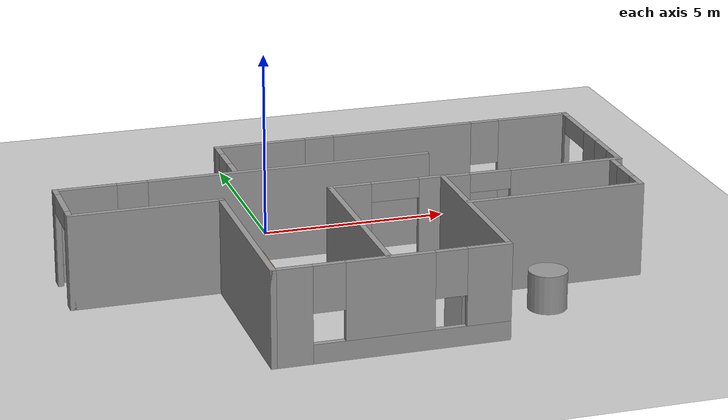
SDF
<sdf version="1.6">
 <world name="default">
  <light name="sun" type="directional">
   <pose>0 0 10 0 -0 0</pose>
   <diffuse>0.8 0.8 0.8 1</diffuse>
   <specular>0.1 0.1 0.1 1</specular>
   <attenuation>
    <range>1000</range>
    <constant>0.9</constant>
    <linear>0.01</linear>
    <quadratic>0.001</quadratic>
   </attenuation>
   <direction>-0.5 0.5 -1</direction>
  </light>
  <model name="ground_plane">
   <static>1</static>
   <link name="link">
    <collision name="collision">
     <geometry><plane><normal>0 0 1</normal><size>100 100</size></plane></geometry>
     <surface><friction><ode><mu>100</mu><mu2>50</mu2></ode></friction></surface>
    </collision>
    <visual name="visual">
     <cast_shadows>0</cast_shadows>
     <geometry><plane><normal>0 0 1</normal><size>100 100</size></plane></geometry>
     <material>
      <script><uri>file://media/materials/scripts/gazebo.material</uri><name>Gazebo/Grey</name></script>
     </material>
    </visual>
   </link>
  </model>
  <gravity>0 0 -9.8</gravity>
  <magnetic_field>6e-06 2.3e-05 -4.2e-05</magnetic_field>
  <atmosphere type="adiabatic"/>
  <physics name="default_physics" default="0" type="ode">
   <max_step_size>0.001</max_step_size>
   <real_time_factor>1</real_time_factor>
   <real_time_update_rate>1000</real_time_update_rate>
  </physics>
  <scene><ambient>0.4 0.4 0.4 1</ambient><background>0.7 0.7 0.7 1</background><shadows>1</shadows></scene>
  <spherical_coordinates>
   <surface_model>EARTH_WGS84</surface_model>
   <latitude_deg>0</latitude_deg>
   <longitude_deg>0</longitude_deg>
   <elevation>0</elevation>
   <heading_deg>0</heading_deg>
  </spherical_coordinates>
  <model name="MyHouse">
   <pose>1.335 -4.15 0 0 -0 0</pose>
   <link name="Wall_0">
    <pose>-2.35 2.35 0 0 -0 3.14159</pose>
    <visual name="Wall_0_Visual_0">
     <pose>-1.22429 0 1.25 0 -0 0</pose>
     <geometry><box><size>7.55142 0.15 2.5</size></box></geometry>
     <material>
      <script><uri>file://media/materials/scripts/gazebo.material</uri><name>Gazebo/Grey</name></script>
      <ambient>1 1 1 1</ambient>
     </material>
    </visual>
    <collision name="Wall_0_Collision_0">
     <geometry><box><size>7.55142 0.15 2.5</size></box></geometry>
     <pose>-1.22429 0 1.25 0 -0 0</pose>
    </collision>
    <visual name="Wall_0_Visual_1">
     <pose>3.77571 0 0.25 0 -0 0</pose>
     <geometry><box><size>2.44858 0.15 0.5</size></box></geometry>
     <material>
      <script><uri>file://media/materials/scripts/gazebo.material</uri><name>Gazebo/Grey</name></script>
      <ambient>1 1 1 1</ambient>
     </material>
    </visual>
    <collision name="Wall_0_Collision_1">
     <geometry><box><size>2.44858 0.15 0.5</size></box></geometry>
     <pose>3.77571 0 0.25 0 -0 0</pose>
    </collision>
    <visual name="Wall_0_Visual_2">
     <pose>4.17571 0 1.5 0 -0 0</pose>
     <geometry><box><size>1.64858 0.15 2</size></box></geometry>
     <material>
      <script><uri>file://media/materials/scripts/gazebo.material</uri><name>Gazebo/Grey</name></script>
      <ambient>1 1 1 1</ambient>
     </material>
    </visual>
    <collision name="Wall_0_Collision_2">
     <geometry><box><size>1.64858 0.15 2</size></box></geometry>
     <pose>4.17571 0 1.5 0 -0 0</pose>
    </collision>
    <visual name="Wall_0_Visual_3">
     <pose>2.95142 0 1.9 0 -0 0</pose>
     <geometry><box><size>0.8 0.15 1.2</size></box></geometry>
     <material>
      <script><uri>file://media/materials/scripts/gazebo.material</uri><name>Gazebo/Grey</name></script>
      <ambient>1 1 1 1</ambient>
     </material>
    </visual>
    <collision name="Wall_0_Collision_3">
     <geometry><box><size>0.8 0.15 1.2</size></box></geometry>
     <pose>2.95142 0 1.9 0 -0 0</pose>
    </collision>
   </link>
   <link name="Wall_1">
    <pose>-7.275 1.425 0 0 0 -1.5708</pose>
    <visual name="Wall_1_Visual_0">
     <pose>-0.815373 0 1.25 0 -0 0</pose>
     <geometry><box><size>0.369253 0.15 2.5</size></box></geometry>
     <material>
      <script><uri>file://media/materials/scripts/gazebo.material</uri><name>Gazebo/Grey</name></script>
      <ambient>1 1 1 1</ambient>
     </material>
    </visual>
    <collision name="Wall_1_Collision_0">
     <geometry><box><size>0.369253 0.15 2.5</size></box></geometry>
     <pose>-0.815373 0 1.25 0 -0 0</pose>
    </collision>
    <visual name="Wall_1_Visual_1">
     <pose>0.808106 0 1.25 0 -0 0</pose>
     <geometry><box><size>0.383788 0.15 2.5</size></box></geometry>
     <material>
      <script><uri>file://media/materials/scripts/gazebo.material</uri><name>Gazebo/Grey</name></script>
      <ambient>1 1 1 1</ambient>
     </material>
    </visual>
    <collision name="Wall_1_Collision_1">
     <geometry><box><size>0.383788 0.15 2.5</size></box></geometry>
     <pose>0.808106 0 1.25 0 -0 0</pose>
    </collision>
    <visual name="Wall_1_Visual_2">
     <pose>-0.007267 0 2.25 0 -0 0</pose>
     <geometry><box><size>1.24696 0.15 0.5</size></box></geometry>
     <material>
      <script><uri>file://media/materials/scripts/gazebo.material</uri><name>Gazebo/Grey</name></script>
      <ambient>1 1 1 1</ambient>
     </material>
    </visual>
    <collision name="Wall_1_Collision_2">
     <geometry><box><size>1.24696 0.15 0.5</size></box></geometry>
     <pose>-0.007267 0 2.25 0 -0 0</pose>
    </collision>
   </link>
   <link name="Wall_11">
    <collision name="Wall_11_Collision">
     <geometry><box><size>5 0.15 2.5</size></box></geometry>
     <pose>0 0 1.25 0 -0 0</pose>
    </collision>
    <visual name="Wall_11_Visual">
     <pose>0 0 1.25 0 -0 0</pose>
     <geometry><box><size>5 0.15 2.5</size></box></geometry>
     <material>
      <script><uri>file://media/materials/scripts/gazebo.material</uri><name>Gazebo/Grey</name></script>
      <ambient>1 1 1 1</ambient>
     </material>
    </visual>
    <pose>-0.574333 -1.86578 0 0 -0 1.5708</pose>
   </link>
   <link name="Wall_12">
    <pose>0.975667 0.559224 0 0 -0 0</pose>
    <visual name="Wall_12_Visual_0">
     <pose>-1.04763 0 1.25 0 -0 0</pose>
     <geometry><box><size>1.15474 0.15 2.5</size></box></geometry>
     <material>
      <script><uri>file://media/materials/scripts/gazebo.material</uri><name>Gazebo/Grey</name></script>
      <ambient>1 1 1 1</ambient>
     </material>
    </visual>
    <collision name="Wall_12_Collision_0">
     <geometry><box><size>1.15474 0.15 2.5</size></box></geometry>
     <pose>-1.04763 0 1.25 0 -0 0</pose>
    </collision>
    <visual name="Wall_12_Visual_1">
     <pose>1.21242 0 1.25 0 -0 0</pose>
     <geometry><box><size>0.825166 0.15 2.5</size></box></geometry>
     <material>
      <script><uri>file://media/materials/scripts/gazebo.material</uri><name>Gazebo/Grey</name></script>
      <ambient>1 1 1 1</ambient>
     </material>
    </visual>
    <collision name="Wall_12_Collision_1">
     <geometry><box><size>0.825166 0.15 2.5</size></box></geometry>
     <pose>1.21242 0 1.25 0 -0 0</pose>
    </collision>
    <visual name="Wall_12_Visual_2">
     <pose>0.164789 0 2.25 0 -0 0</pose>
     <geometry><box><size>1.27009 0.15 0.5</size></box></geometry>
     <material>
      <script><uri>file://media/materials/scripts/gazebo.material</uri><name>Gazebo/Grey</name></script>
      <ambient>1 1 1 1</ambient>
     </material>
    </visual>
    <collision name="Wall_12_Collision_2">
     <geometry><box><size>1.27009 0.15 0.5</size></box></geometry>
     <pose>0.164789 0 2.25 0 -0 0</pose>
    </collision>
   </link>
   <link name="Wall_14">
    <collision name="Wall_14_Collision">
     <geometry><box><size>4.75 0.15 2.5</size></box></geometry>
     <pose>0 0 1.25 0 -0 0</pose>
    </collision>
    <visual name="Wall_14_Visual">
     <pose>0 0 1.25 0 -0 0</pose>
     <geometry><box><size>4.75 0.15 2.5</size></box></geometry>
     <material>
      <script><uri>file://media/materials/scripts/gazebo.material</uri><name>Gazebo/Grey</name></script>
      <ambient>1 1 1 1</ambient>
     </material>
    </visual>
    <pose>4.77047 -1.4128 0 0 -0 0</pose>
   </link>
   <link name="Wall_15">
    <pose>7.07047 -0.487798 0 0 -0 1.5708</pose>
    <visual name="Wall_15_Visual_0">
     <pose>-0.688322 0 1.25 0 -0 0</pose>
     <geometry><box><size>0.623355 0.15 2.5</size></box></geometry>
     <material>
      <script><uri>file://media/materials/scripts/gazebo.material</uri><name>Gazebo/Grey</name></script>
      <ambient>1 1 1 1</ambient>
     </material>
    </visual>
    <collision name="Wall_15_Collision_0">
     <geometry><box><size>0.623355 0.15 2.5</size></box></geometry>
     <pose>-0.688322 0 1.25 0 -0 0</pose>
    </collision>
    <visual name="Wall_15_Visual_1">
     <pose>0.311678 0 0.25 0 -0 0</pose>
     <geometry><box><size>1.37664 0.15 0.5</size></box></geometry>
     <material>
      <script><uri>file://media/materials/scripts/gazebo.material</uri><name>Gazebo/Grey</name></script>
      <ambient>1 1 1 1</ambient>
     </material>
    </visual>
    <collision name="Wall_15_Collision_1">
     <geometry><box><size>1.37664 0.15 0.5</size></box></geometry>
     <pose>0.311678 0 0.25 0 -0 0</pose>
    </collision>
    <visual name="Wall_15_Visual_2">
     <pose>0.711678 0 1.5 0 -0 0</pose>
     <geometry><box><size>0.576645 0.15 2</size></box></geometry>
     <material>
      <script><uri>file://media/materials/scripts/gazebo.material</uri><name>Gazebo/Grey</name></script>
      <ambient>1 1 1 1</ambient>
     </material>
    </visual>
    <collision name="Wall_15_Collision_2">
     <geometry><box><size>0.576645 0.15 2</size></box></geometry>
     <pose>0.711678 0 1.5 0 -0 0</pose>
    </collision>
    <visual name="Wall_15_Visual_3">
     <pose>0.023355 0 1.9 0 -0 0</pose>
     <geometry><box><size>0.8 0.15 1.2</size></box></geometry>
     <material>
      <script><uri>file://media/materials/scripts/gazebo.material</uri><name>Gazebo/Grey</name></script>
      <ambient>1 1 1 1</ambient>
     </material>
    </visual>
    <collision name="Wall_15_Collision_3">
     <geometry><box><size>0.8 0.15 1.2</size></box></geometry>
     <pose>0.023355 0 1.9 0 -0 0</pose>
    </collision>
   </link>
   <link name="Wall_2">
    <collision name="Wall_2_Collision">
     <geometry><box><size>4 0.15 2.5</size></box></geometry>
     <pose>0 0 1.25 0 -0 0</pose>
    </collision>
    <visual name="Wall_2_Visual">
     <pose>0 0 1.25 0 -0 0</pose>
     <geometry><box><size>4 0.15 2.5</size></box></geometry>
     <material>
      <script><uri>file://media/materials/scripts/gazebo.material</uri><name>Gazebo/Grey</name></script>
      <ambient>1 1 1 1</ambient>
     </material>
    </visual>
    <pose>-5.35 0.5 0 0 -0 0</pose>
   </link>
   <link name="Wall_3">
    <collision name="Wall_3_Collision">
     <geometry><box><size>5 0.15 2.5</size></box></geometry>
     <pose>0 0 1.25 0 -0 0</pose>
    </collision>
    <visual name="Wall_3_Visual">
     <pose>0 0 1.25 0 -0 0</pose>
     <geometry><box><size>5 0.15 2.5</size></box></geometry>
     <material>
      <script><uri>file://media/materials/scripts/gazebo.material</uri><name>Gazebo/Grey</name></script>
      <ambient>1 1 1 1</ambient>
     </material>
    </visual>
    <pose>-3.425 -1.925 0 0 0 -1.5708</pose>
   </link>
   <link name="Wall_4">
    <pose>-0.5 -4.35 0 0 -0 0</pose>
    <visual name="Wall_4_Visual_0">
     <pose>-2.48157 0 1.25 0 -0 0</pose>
     <geometry><box><size>1.03687 0.15 2.5</size></box></geometry>
     <material>
      <script><uri>file://media/materials/scripts/gazebo.material</uri><name>Gazebo/Grey</name></script>
      <ambient>1 1 1 1</ambient>
     </material>
    </visual>
    <collision name="Wall_4_Collision_0">
     <geometry><box><size>1.03687 0.15 2.5</size></box></geometry>
     <pose>-2.48157 0 1.25 0 -0 0</pose>
    </collision>
    <visual name="Wall_4_Visual_1">
     <pose>0.518433 0 0.25 0 -0 0</pose>
     <geometry><box><size>4.96313 0.15 0.5</size></box></geometry>
     <material>
      <script><uri>file://media/materials/scripts/gazebo.material</uri><name>Gazebo/Grey</name></script>
      <ambient>1 1 1 1</ambient>
     </material>
    </visual>
    <collision name="Wall_4_Collision_1">
     <geometry><box><size>4.96313 0.15 0.5</size></box></geometry>
     <pose>0.518433 0 0.25 0 -0 0</pose>
    </collision>
    <visual name="Wall_4_Visual_2">
     <pose>-0.048078 0 1.5 0 -0 0</pose>
     <geometry><box><size>2.23011 0.15 2</size></box></geometry>
     <material>
      <script><uri>file://media/materials/scripts/gazebo.material</uri><name>Gazebo/Grey</name></script>
      <ambient>1 1 1 1</ambient>
     </material>
    </visual>
    <collision name="Wall_4_Collision_2">
     <geometry><box><size>2.23011 0.15 2</size></box></geometry>
     <pose>-0.048078 0 1.5 0 -0 0</pose>
    </collision>
    <visual name="Wall_4_Visual_3">
     <pose>2.43349 0 1.5 0 -0 0</pose>
     <geometry><box><size>1.13302 0.15 2</size></box></geometry>
     <material>
      <script><uri>file://media/materials/scripts/gazebo.material</uri><name>Gazebo/Grey</name></script>
      <ambient>1 1 1 1</ambient>
     </material>
    </visual>
    <collision name="Wall_4_Collision_3">
     <geometry><box><size>1.13302 0.15 2</size></box></geometry>
     <pose>2.43349 0 1.5 0 -0 0</pose>
    </collision>
    <visual name="Wall_4_Visual_4">
     <pose>-1.56313 0 1.9 0 -0 0</pose>
     <geometry><box><size>0.8 0.15 1.2</size></box></geometry>
     <material>
      <script><uri>file://media/materials/scripts/gazebo.material</uri><name>Gazebo/Grey</name></script>
      <ambient>1 1 1 1</ambient>
     </material>
    </visual>
    <collision name="Wall_4_Collision_4">
     <geometry><box><size>0.8 0.15 1.2</size></box></geometry>
     <pose>-1.56313 0 1.9 0 -0 0</pose>
    </collision>
    <visual name="Wall_4_Visual_5">
     <pose>1.46698 0 1.9 0 -0 0</pose>
     <geometry><box><size>0.8 0.15 1.2</size></box></geometry>
     <material>
      <script><uri>file://media/materials/scripts/gazebo.material</uri><name>Gazebo/Grey</name></script>
      <ambient>1 1 1 1</ambient>
     </material>
    </visual>
    <collision name="Wall_4_Collision_5">
     <geometry><box><size>0.8 0.15 1.2</size></box></geometry>
     <pose>1.46698 0 1.9 0 -0 0</pose>
    </collision>
   </link>
   <link name="Wall_5">
    <collision name="Wall_5_Collision">
     <geometry><box><size>5 0.15 2.5</size></box></geometry>
     <pose>0 0 1.25 0 -0 0</pose>
    </collision>
    <visual name="Wall_5_Visual">
     <pose>0 0 1.25 0 -0 0</pose>
     <geometry><box><size>5 0.15 2.5</size></box></geometry>
     <material>
      <script><uri>file://media/materials/scripts/gazebo.material</uri><name>Gazebo/Grey</name></script>
      <ambient>1 1 1 1</ambient>
     </material>
    </visual>
    <pose>2.425 -1.925 0 0 -0 1.5708</pose>
   </link>
   <link name="Wall_6">
    <pose>4.85 0.5 0 0 -0 0</pose>
    <visual name="Wall_6_Visual_0">
     <pose>-2.10385 0 1.25 0 -0 0</pose>
     <geometry><box><size>0.792301 0.15 2.5</size></box></geometry>
     <material>
      <script><uri>file://media/materials/scripts/gazebo.material</uri><name>Gazebo/Grey</name></script>
      <ambient>1 1 1 1</ambient>
     </material>
    </visual>
    <collision name="Wall_6_Collision_0">
     <geometry><box><size>0.792301 0.15 2.5</size></box></geometry>
     <pose>-2.10385 0 1.25 0 -0 0</pose>
    </collision>
    <visual name="Wall_6_Visual_1">
     <pose>0.950238 0 1.25 0 -0 0</pose>
     <geometry><box><size>3.09952 0.15 2.5</size></box></geometry>
     <material>
      <script><uri>file://media/materials/scripts/gazebo.material</uri><name>Gazebo/Grey</name></script>
      <ambient>1 1 1 1</ambient>
     </material>
    </visual>
    <collision name="Wall_6_Collision_1">
     <geometry><box><size>3.09952 0.15 2.5</size></box></geometry>
     <pose>0.950238 0 1.25 0 -0 0</pose>
    </collision>
    <visual name="Wall_6_Visual_2">
     <pose>-1.15361 0 2.25 0 -0 0</pose>
     <geometry><box><size>1.10817 0.15 0.5</size></box></geometry>
     <material>
      <script><uri>file://media/materials/scripts/gazebo.material</uri><name>Gazebo/Grey</name></script>
      <ambient>1 1 1 1</ambient>
     </material>
    </visual>
    <collision name="Wall_6_Collision_2">
     <geometry><box><size>1.10817 0.15 0.5</size></box></geometry>
     <pose>-1.15361 0 2.25 0 -0 0</pose>
    </collision>
   </link>
   <link name="Wall_7">
    <pose>7.275 2.425 0 0 -0 1.5708</pose>
    <visual name="Wall_7_Visual_0">
     <pose>-1.62697 0 1.25 0 -0 0</pose>
     <geometry><box><size>0.746051 0.15 2.5</size></box></geometry>
     <material>
      <script><uri>file://media/materials/scripts/gazebo.material</uri><name>Gazebo/Grey</name></script>
      <ambient>1 1 1 1</ambient>
     </material>
    </visual>
    <collision name="Wall_7_Collision_0">
     <geometry><box><size>0.746051 0.15 2.5</size></box></geometry>
     <pose>-1.62697 0 1.25 0 -0 0</pose>
    </collision>
    <visual name="Wall_7_Visual_1">
     <pose>1.83312 0 1.25 0 -0 0</pose>
     <geometry><box><size>0.33376 0.15 2.5</size></box></geometry>
     <material>
      <script><uri>file://media/materials/scripts/gazebo.material</uri><name>Gazebo/Grey</name></script>
      <ambient>1 1 1 1</ambient>
     </material>
    </visual>
    <collision name="Wall_7_Collision_1">
     <geometry><box><size>0.33376 0.15 2.5</size></box></geometry>
     <pose>1.83312 0 1.25 0 -0 0</pose>
    </collision>
    <visual name="Wall_7_Visual_2">
     <pose>-0.463595 0 0.25 0 -0 0</pose>
     <geometry><box><size>1.58071 0.15 0.5</size></box></geometry>
     <material>
      <script><uri>file://media/materials/scripts/gazebo.material</uri><name>Gazebo/Grey</name></script>
      <ambient>1 1 1 1</ambient>
     </material>
    </visual>
    <collision name="Wall_7_Collision_2">
     <geometry><box><size>1.58071 0.15 0.5</size></box></geometry>
     <pose>-0.463595 0 0.25 0 -0 0</pose>
    </collision>
    <visual name="Wall_7_Visual_3">
     <pose>-0.063595 0 1.5 0 -0 0</pose>
     <geometry><box><size>0.780708 0.15 2</size></box></geometry>
     <material>
      <script><uri>file://media/materials/scripts/gazebo.material</uri><name>Gazebo/Grey</name></script>
      <ambient>1 1 1 1</ambient>
     </material>
    </visual>
    <collision name="Wall_7_Collision_3">
     <geometry><box><size>0.780708 0.15 2</size></box></geometry>
     <pose>-0.063595 0 1.5 0 -0 0</pose>
    </collision>
    <visual name="Wall_7_Visual_4">
     <pose>-0.853949 0 1.9 0 -0 0</pose>
     <geometry><box><size>0.8 0.15 1.2</size></box></geometry>
     <material>
      <script><uri>file://media/materials/scripts/gazebo.material</uri><name>Gazebo/Grey</name></script>
      <ambient>1 1 1 1</ambient>
     </material>
    </visual>
    <collision name="Wall_7_Collision_4">
     <geometry><box><size>0.8 0.15 1.2</size></box></geometry>
     <pose>-0.853949 0 1.9 0 -0 0</pose>
    </collision>
    <visual name="Wall_7_Visual_5">
     <pose>0.9965 0 2.25 0 -0 0</pose>
     <geometry><box><size>1.33948 0.15 0.5</size></box></geometry>
     <material>
      <script><uri>file://media/materials/scripts/gazebo.material</uri><name>Gazebo/Grey</name></script>
      <ambient>1 1 1 1</ambient>
     </material>
    </visual>
    <collision name="Wall_7_Collision_5">
     <geometry><box><size>1.33948 0.15 0.5</size></box></geometry>
     <pose>0.9965 0 2.25 0 -0 0</pose>
    </collision>
   </link>
   <link name="Wall_8">
    <pose>2.35 4.35 0 0 -0 3.14159</pose>
    <visual name="Wall_8_Visual_0">
     <pose>-3.98616 0 1.25 0 -0 0</pose>
     <geometry><box><size>2.02769 0.15 2.5</size></box></geometry>
     <material>
      <script><uri>file://media/materials/scripts/gazebo.material</uri><name>Gazebo/Grey</name></script>
      <ambient>1 1 1 1</ambient>
     </material>
    </visual>
    <collision name="Wall_8_Collision_0">
     <geometry><box><size>2.02769 0.15 2.5</size></box></geometry>
     <pose>-3.98616 0 1.25 0 -0 0</pose>
    </collision>
    <visual name="Wall_8_Visual_1">
     <pose>1.01385 0 0.25 0 -0 0</pose>
     <geometry><box><size>7.97231 0.15 0.5</size></box></geometry>
     <material>
      <script><uri>file://media/materials/scripts/gazebo.material</uri><name>Gazebo/Grey</name></script>
      <ambient>1 1 1 1</ambient>
     </material>
    </visual>
    <collision name="Wall_8_Collision_1">
     <geometry><box><size>7.97231 0.15 0.5</size></box></geometry>
     <pose>1.01385 0 0.25 0 -0 0</pose>
    </collision>
    <visual name="Wall_8_Visual_2">
     <pose>-0.224554 0 1.5 0 -0 0</pose>
     <geometry><box><size>3.89551 0.15 2</size></box></geometry>
     <material>
      <script><uri>file://media/materials/scripts/gazebo.material</uri><name>Gazebo/Grey</name></script>
      <ambient>1 1 1 1</ambient>
     </material>
    </visual>
    <collision name="Wall_8_Collision_2">
     <geometry><box><size>3.89551 0.15 2</size></box></geometry>
     <pose>-0.224554 0 1.5 0 -0 0</pose>
    </collision>
    <visual name="Wall_8_Visual_3">
     <pose>3.7616 0 1.5 0 -0 0</pose>
     <geometry><box><size>2.4768 0.15 2</size></box></geometry>
     <material>
      <script><uri>file://media/materials/scripts/gazebo.material</uri><name>Gazebo/Grey</name></script>
      <ambient>1 1 1 1</ambient>
     </material>
    </visual>
    <collision name="Wall_8_Collision_3">
     <geometry><box><size>2.4768 0.15 2</size></box></geometry>
     <pose>3.7616 0 1.5 0 -0 0</pose>
    </collision>
    <visual name="Wall_8_Visual_4">
     <pose>-2.57231 0 1.9 0 -0 0</pose>
     <geometry><box><size>0.8 0.15 1.2</size></box></geometry>
     <material>
      <script><uri>file://media/materials/scripts/gazebo.material</uri><name>Gazebo/Grey</name></script>
      <ambient>1 1 1 1</ambient>
     </material>
    </visual>
    <collision name="Wall_8_Collision_4">
     <geometry><box><size>0.8 0.15 1.2</size></box></geometry>
     <pose>-2.57231 0 1.9 0 -0 0</pose>
    </collision>
    <visual name="Wall_8_Visual_5">
     <pose>2.1232 0 1.9 0 -0 0</pose>
     <geometry><box><size>0.8 0.15 1.2</size></box></geometry>
     <material>
      <script><uri>file://media/materials/scripts/gazebo.material</uri><name>Gazebo/Grey</name></script>
      <ambient>1 1 1 1</ambient>
     </material>
    </visual>
    <collision name="Wall_8_Collision_5">
     <geometry><box><size>0.8 0.15 1.2</size></box></geometry>
     <pose>2.1232 0 1.9 0 -0 0</pose>
    </collision>
   </link>
   <link name="Wall_9">
    <pose>-2.575 3.425 0 0 0 -1.5708</pose>
    <visual name="Wall_9_Visual_0">
     <pose>-0.69825 0 1.25 0 -0 0</pose>
     <geometry><box><size>0.6035 0.15 2.5</size></box></geometry>
     <material>
      <script><uri>file://media/materials/scripts/gazebo.material</uri><name>Gazebo/Grey</name></script>
      <ambient>1 1 1 1</ambient>
     </material>
    </visual>
    <collision name="Wall_9_Collision_0">
     <geometry><box><size>0.6035 0.15 2.5</size></box></geometry>
     <pose>-0.69825 0 1.25 0 -0 0</pose>
    </collision>
    <visual name="Wall_9_Visual_1">
     <pose>0.30175 0 0.25 0 -0 0</pose>
     <geometry><box><size>1.3965 0.15 0.5</size></box></geometry>
     <material>
      <script><uri>file://media/materials/scripts/gazebo.material</uri><name>Gazebo/Grey</name></script>
      <ambient>1 1 1 1</ambient>
     </material>
    </visual>
    <collision name="Wall_9_Collision_1">
     <geometry><box><size>1.3965 0.15 0.5</size></box></geometry>
     <pose>0.30175 0 0.25 0 -0 0</pose>
    </collision>
    <visual name="Wall_9_Visual_2">
     <pose>0.70175 0 1.5 0 -0 0</pose>
     <geometry><box><size>0.5965 0.15 2</size></box></geometry>
     <material>
      <script><uri>file://media/materials/scripts/gazebo.material</uri><name>Gazebo/Grey</name></script>
      <ambient>1 1 1 1</ambient>
     </material>
    </visual>
    <collision name="Wall_9_Collision_2">
     <geometry><box><size>0.5965 0.15 2</size></box></geometry>
     <pose>0.70175 0 1.5 0 -0 0</pose>
    </collision>
    <visual name="Wall_9_Visual_3">
     <pose>0.0035 0 1.9 0 -0 0</pose>
     <geometry><box><size>0.8 0.15 1.2</size></box></geometry>
     <material>
      <script><uri>file://media/materials/scripts/gazebo.material</uri><name>Gazebo/Grey</name></script>
      <ambient>1 1 1 1</ambient>
     </material>
    </visual>
    <collision name="Wall_9_Collision_3">
     <geometry><box><size>0.8 0.15 1.2</size></box></geometry>
     <pose>0.0035 0 1.9 0 -0 0</pose>
    </collision>
   </link>
   <static>1</static>
  </model>
  <model name="table">
   <static>0</static>
   <link name="link">
    <collision name="surface">
     <pose>0 0 1 0 -0 0</pose>
     <geometry><box><size>1.5 0.8 0.03</size></box></geometry>
     <surface><friction><ode><mu>0.6</mu><mu2>0.6</mu2></ode></friction></surface>
    </collision>
    <visual name="visual1">
     <pose>0 0 1 0 -0 0</pose>
     <geometry><box><size>1.4 0.8 0.04</size></box></geometry>
     <material>
      <script><uri>file://media/materials/scripts/gazebo.material</uri><name>Gazebo/Wood</name></script>
     </material>
    </visual>
    <collision name="front_left_leg">
     <pose>0.68 0.38 0.5 0 -0 0</pose>
     <geometry><cylinder><radius>0.02</radius><length>1</length></cylinder></geometry>
    </collision>
    <visual name="front_left_leg">
     <pose>0.68 0.38 0.5 0 -0 0</pose>
     <geometry><cylinder><radius>0.02</radius><length>1</length></cylinder></geometry>
     <material>
      <script><uri>file://media/materials/scripts/gazebo.material</uri><name>Gazebo/Grey</name></script>
     </material>
    </visual>
    <collision name="front_right_leg">
     <pose>0.68 -0.38 0.5 0 -0 0</pose>
     <geometry><cylinder><radius>0.02</radius><length>1</length></cylinder></geometry>
    </collision>
    <visual name="front_right_leg">
     <pose>0.68 -0.38 0.5 0 -0 0</pose>
     <geometry><cylinder><radius>0.02</radius><length>1</length></cylinder></geometry>
     <material>
      <script><uri>file://media/materials/scripts/gazebo.material</uri><name>Gazebo/Grey</name></script>
     </material>
    </visual>
    <collision name="back_right_leg">
     <pose>-0.68 -0.38 0.5 0 -0 0</pose>
     <geometry><cylinder><radius>0.02</radius><length>1</length></cylinder></geometry>
    </collision>
    <visual name="back_right_leg">
     <pose>-0.68 -0.38 0.5 0 -0 0</pose>
     <geometry><cylinder><radius>0.02</radius><length>1</length></cylinder></geometry>
     <material>
      <script><uri>file://media/materials/scripts/gazebo.material</uri><name>Gazebo/Grey</name></script>
     </material>
    </visual>
    <collision name="back_left_leg">
     <pose>-0.68 0.38 0.5 0 -0 0</pose>
     <geometry><cylinder><radius>0.02</radius><length>1</length></cylinder></geometry>
    </collision>
    <visual name="back_left_leg">
     <pose>-0.68 0.38 0.5 0 -0 0</pose>
     <geometry><cylinder><radius>0.02</radius><length>1</length></cylinder></geometry>
     <material>
      <script><uri>file://media/materials/scripts/gazebo.material</uri><name>Gazebo/Grey</name></script>
     </material>
    </visual>
    <inertial>
     <inertia><ixx>1</ixx><ixy>0</ixy><ixz>0</ixz><iyy>1</iyy><iyz>0</iyz><izz>1</izz></inertia>
     <mass>1</mass>
    </inertial>
   </link>
   <pose>7.52075 -4.18694 -1e-06 -1e-06 1e-06 0</pose>
  </model>
  <model name="table_0">
   <static>0</static>
   <link name="link">
    <collision name="surface">
     <pose>0 0 1 0 -0 0</pose>
     <geometry><box><size>1.5 0.8 0.03</size></box></geometry>
     <surface><friction><ode><mu>0.6</mu><mu2>0.6</mu2></ode></friction></surface>
    </collision>
    <visual name="visual1">
     <pose>0 0 1 0 -0 0</pose>
     <geometry><box><size>1.4 0.8 0.04</size></box></geometry>
     <material>
      <script><uri>file://media/materials/scripts/gazebo.material</uri><name>Gazebo/Wood</name></script>
     </material>
    </visual>
    <collision name="front_left_leg">
     <pose>0.68 0.38 0.5 0 -0 0</pose>
     <geometry><cylinder><radius>0.02</radius><length>1</length></cylinder></geometry>
    </collision>
    <visual name="front_left_leg">
     <pose>0.68 0.38 0.5 0 -0 0</pose>
     <geometry><cylinder><radius>0.02</radius><length>1</length></cylinder></geometry>
     <material>
      <script><uri>file://media/materials/scripts/gazebo.material</uri><name>Gazebo/Grey</name></script>
     </material>
    </visual>
    <collision name="front_right_leg">
     <pose>0.68 -0.38 0.5 0 -0 0</pose>
     <geometry><cylinder><radius>0.02</radius><length>1</length></cylinder></geometry>
    </collision>
    <visual name="front_right_leg">
     <pose>0.68 -0.38 0.5 0 -0 0</pose>
     <geometry><cylinder><radius>0.02</radius><length>1</length></cylinder></geometry>
     <material>
      <script><uri>file://media/materials/scripts/gazebo.material</uri><name>Gazebo/Grey</name></script>
     </material>
    </visual>
    <collision name="back_right_leg">
     <pose>-0.68 -0.38 0.5 0 -0 0</pose>
     <geometry><cylinder><radius>0.02</radius><length>1</length></cylinder></geometry>
    </collision>
    <visual name="back_right_leg">
     <pose>-0.68 -0.38 0.5 0 -0 0</pose>
     <geometry><cylinder><radius>0.02</radius><length>1</length></cylinder></geometry>
     <material>
      <script><uri>file://media/materials/scripts/gazebo.material</uri><name>Gazebo/Grey</name></script>
     </material>
    </visual>
    <collision name="back_left_leg">
     <pose>-0.68 0.38 0.5 0 -0 0</pose>
     <geometry><cylinder><radius>0.02</radius><length>1</length></cylinder></geometry>
    </collision>
    <visual name="back_left_leg">
     <pose>-0.68 0.38 0.5 0 -0 0</pose>
     <geometry><cylinder><radius>0.02</radius><length>1</length></cylinder></geometry>
     <material>
      <script><uri>file://media/materials/scripts/gazebo.material</uri><name>Gazebo/Grey</name></script>
     </material>
    </visual>
    <inertial>
     <inertia><ixx>1</ixx><ixy>0</ixy><ixz>0</ixz><iyy>1</iyy><iyz>0</iyz><izz>1</izz></inertia>
     <mass>1</mass>
    </inertial>
   </link>
   <pose>-1.45118 -4.38755 -7e-06 0 4e-06 -1.56824</pose>
  </model>
  <model name="unit_box_0">
   <pose>7.86644 -2.93793 0.499999 -4e-06 -8e-06 -5.8e-05</pose>
   <link name="link">
    <inertial>
     <mass>1</mass>
     <inertia>
      <ixx>0.166667</ixx>
      <ixy>0</ixy>
      <ixz>0</ixz>
      <iyy>0.166667</iyy>
      <iyz>0</iyz>
      <izz>0.166667</izz>
     </inertia>
    </inertial>
    <collision name="collision"><geometry><box><size>0.816742 0.862092 1</size></box></geometry></collision>
    <visual name="visual">
     <geometry><box><size>0.816742 0.862092 1</size></box></geometry>
     <material>
      <script><name>Gazebo/Grey</name><uri>file://media/materials/scripts/gazebo.material</uri></script>
     </material>
    </visual>
   </link>
  </model>
  <model name="unit_box_1">
   <pose>2.8521 -7.59848 0.499997 5e-06 -5e-06 0.618681</pose>
   <link name="link">
    <inertial>
     <mass>1</mass>
     <inertia>
      <ixx>0.166667</ixx>
      <ixy>0</ixy>
      <ixz>0</ixz>
      <iyy>0.166667</iyy>
      <iyz>0</iyz>
      <izz>0.166667</izz>
     </inertia>
    </inertial>
    <collision name="collision"><geometry><box><size>0.535874 0.516966 1</size></box></geometry></collision>
    <visual name="visual">
     <geometry><box><size>0.535874 0.516966 1</size></box></geometry>
     <material>
      <script><name>Gazebo/Grey</name><uri>file://media/materials/scripts/gazebo.material</uri></script>
     </material>
    </visual>
   </link>
  </model>
  <model name="unit_cylinder_0">
   <pose>5.40468 -6.94 0.499998 3e-06 -3e-06 0</pose>
   <link name="link">
    <inertial>
     <mass>1</mass>
     <inertia><ixx>0.145833</ixx><ixy>0</ixy><ixz>0</ixz><iyy>0.145833</iyy><iyz>0</iyz><izz>0.125</izz></inertia>
    </inertial>
    <collision name="collision">
     <geometry><cylinder><radius>0.5</radius><length>1</length></cylinder></geometry>
    </collision>
    <visual name="visual">
     <geometry><cylinder><radius>0.5</radius><length>1</length></cylinder></geometry>
     <material>
      <script><name>Gazebo/Grey</name><uri>file://media/materials/scripts/gazebo.material</uri></script>
     </material>
    </visual>
   </link>
  </model>
  <model name="unit_sphere_0">
   <pose>5.24704 -0.615415 0.174288 0 -0 0</pose>
   <link name="link">
    <inertial>
     <mass>1</mass>
     <inertia><ixx>0.1</ixx><ixy>0</ixy><ixz>0</ixz><iyy>0.1</iyy><iyz>0</iyz><izz>0.1</izz></inertia>
    </inertial>
    <collision name="collision"><geometry><sphere><radius>0.174288</radius></sphere></geometry></collision>
    <visual name="visual">
     <geometry><sphere><radius>0.174288</radius></sphere></geometry>
     <material>
      <script><name>Gazebo/Grey</name><uri>file://media/materials/scripts/gazebo.material</uri></script>
     </material>
    </visual>
   </link>
  </model>
 </world>
</sdf>
